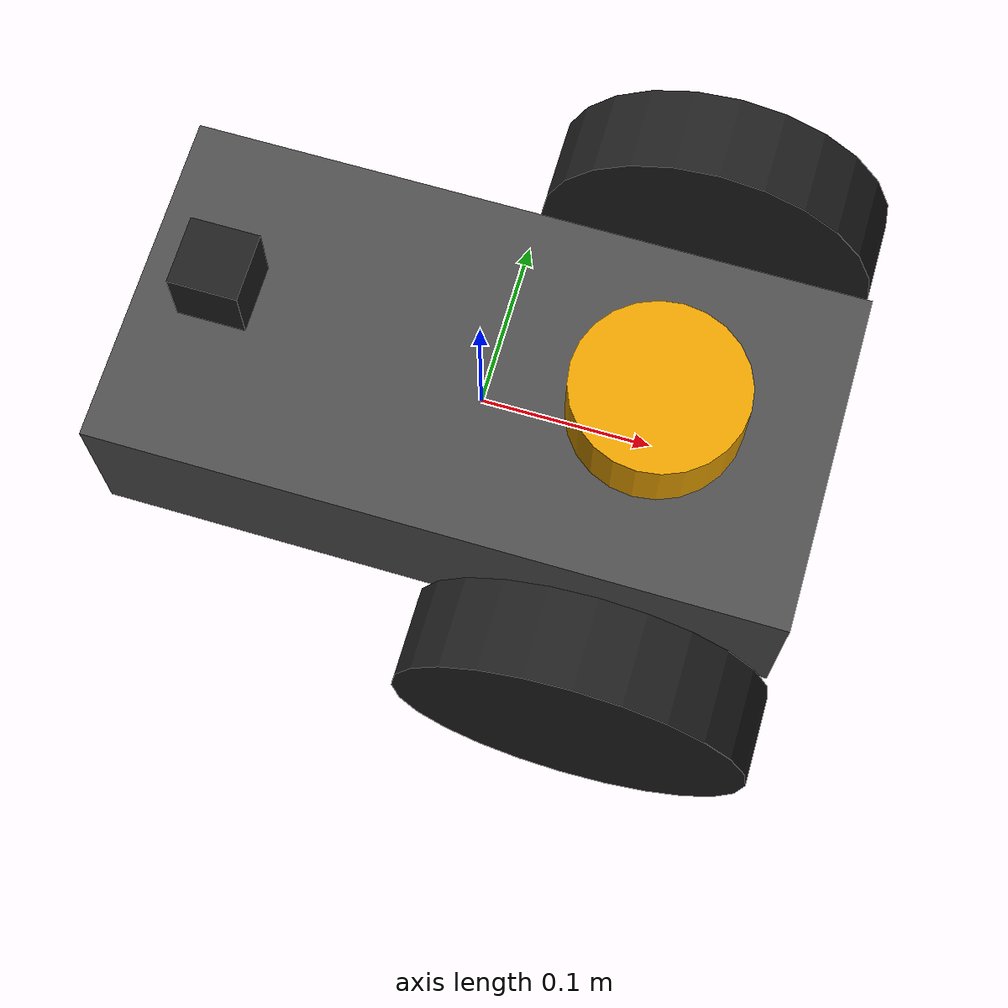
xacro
<?xml version='1.0'?>

<robot name="ros_robotics" xmlns:xacro="http://www.ros.org/wiki/xacro">

	<xacro:include filename="lidar.xacro"/>
  <link name="base_footprint"/>
  <link name='base_link'>
    <pose>0 0 0.1 0 0 0</pose>

    <inertial>
      <mass value="10.0"/>
      <origin xyz="0.0 0 0.1" rpy=" 0 0 0"/>
      <inertia
          ixx="2.0" ixy="0" ixz="0"
          iyy="5.0" iyz="0"
          izz="3.0"
      />
    </inertial>

    <collision>
      <geometry>
        <box size=".4 .2 .1"/>
      </geometry>
    </collision>

    <visual>
      <origin xyz="0 0 0" rpy=" 0 0 0"/>
      <geometry>
        <box size=".4 .2 .1"/>
      </geometry>
    </visual>
</link>
<link name="caster_back_link">
    <collision name='caster_collision'>
      <origin xyz="0 0 0" rpy=" 0 0 0"/>
      <geometry>
        <sphere radius="0.05"/>
      </geometry>
      <surface>
      	<friction>
      		<mu1 value="0.0"/>
      		<mu2 value="0.0"/>
      	</friction>
      </surface>
    </collision>

    <visual name='caster_visual'>
      <origin xyz="0 0 0" rpy=" 0 0 0"/>
      <geometry>
        <sphere radius="0.05"/>
      </geometry>
    </visual>
  </link>
<joint name="caster_back_joint" type="fixed">
	<parent link="base_link"/>
	<child link="caster_back_link"/>
	<origin xyz="-0.15 0 -0.05" rpy="0 0 0"/>
</joint>

  <link name="wheel_left_link">
    <!--origin xyz="0.1 0.13 0.1" rpy="0 1.5707 1.5707"/-->
    <collision name="collision">
      <origin xyz="0 0 0" rpy="0 1.5707 1.5707"/>
      <geometry>
        <cylinder radius="0.1" length="0.05"/>
      </geometry>
    </collision>
    <visual name="left_wheel_visual">
      <origin xyz="0 0 0" rpy="0 1.5707 1.5707"/>
      <geometry>
        <cylinder radius="0.1" length="0.05"/>
      </geometry>
    </visual>
    <inertial>
      <origin xyz="0 0 0" rpy="0 1.5707 1.5707"/>
      <mass value="5"/>
      <cylinder_inertia m="5" r="0.1" h="0.05"/>
      <inertia
        ixx="1.0" ixy="0.0" ixz="0.0"
        iyy="1.0" iyz="0.0"
        izz="1.0"/>
    </inertial>
  </link>

  <link name="wheel_right_link">
    <!--origin xyz="0.1 -0.13 0.1" rpy="0 1.5707 1.5707"/-->
    <collision>
      <origin xyz="0 0 0" rpy="0 1.5707 1.5707"/>
      <geometry>
        <cylinder radius="0.1" length="0.05"/>
      </geometry>
    </collision>
    <visual>
      <origin xyz="0 0 0" rpy="0 1.5707 1.5707"/>
      <geometry>
        <cylinder radius="0.1" length="0.05"/>
      </geometry>
    </visual>
    <inertial>
      <origin xyz="0 0 0" rpy="0 1.5707 1.5707"/>
      <mass value="5"/>
      <cylinder_inertia m="5" r="0.1" h="0.05"/>
      <inertia
        ixx="1.0" ixy="0.0" ixz="0.0"
        iyy="1.0" iyz="0.0"
        izz="1.0"/>
    </inertial>
  </link>
  <joint name="base_joint" type="fixed">
  	<parent link="base_footprint"/>
  	<child link="base_link"/>
  	<origin xyz="0 0 0" rpy="0 0 0"/>
  </joint>

  <joint type="continuous" name="wheel_left_joint">
    <origin xyz="0.1 0.15 0" rpy="0 0 0"/>
    <child link="wheel_left_link"/>
    <parent link="base_link"/>
    <axis xyz="0 1 0" rpy="0 0 0"/>
    <limit effort="100" velocity="100"/>
    <joint_properties damping="0.0" friction="0.0"/>
  </joint>

  <joint type="continuous" name="wheel_right_joint">
    <origin xyz="0.1 -0.15 0" rpy="0 0 0"/>
    <child link="wheel_right_link"/>
    <parent link="base_link"/>
    <axis xyz="0 1 0" rpy="0 0 0"/>
    <limit effort="100" velocity="100"/>
    <joint_properties damping="0.0" friction="0.0"/>
  </joint>
</robot>

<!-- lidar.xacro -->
<robot xmlns:xacro="http://www.ros.org/wiki/xacro">
	<joint name="scan_joint" type="fixed">
		<parent link="base_link"/>
		<child link="base_scan"/>
		<origin xyz="0.1 0 0.07" rpy="0 0 0"/>
	</joint>

	<link name="base_scan">
		<visual>
			<geometry>
				<cylinder radius="0.05" length="0.04"/>
			</geometry>
		</visual>

		<collision name="collision">
      <origin xyz="0 0 0" rpy="0 1.5707 1.5707"/>
      <geometry>
        <cylinder length="0.05" radius="0.1"/>
      </geometry>
    </collision>

	</link>
	<gazebo reference="base_scan">
		<sensor name="laser" type="ray">
			<pose> 0 0 0 0 0 0</pose>
			<update_rate>10</update_rate>
			<ray>
				<scan>
					<horizontal>
						<samples>360</samples>
						<resolution>1</resolution>
						<min_angle>-3.14</min_angle>
						<max_angle>3.14</max_angle>
					</horizontal>

				</scan>
				<range>
					<min>0.3</min>
					<max>12</max>
					<resolution>0.01</resolution>
				</range>
			</ray>
			<plugin name="gazebo_ros_lds_lfcd_controller" filename="libgazebo_ros_laser.so">
				<topicName>scan</topicName>
        <frameName>base_scan</frameName>
			</plugin>
		</sensor>
	</gazebo>

    <joint name="imu_joint" type="fixed">
       <parent link="base_link"/>
       <child link="imu_link"/>
    <origin xyz="-0.15 0 0.08" rpy="0 0 0"/>
    </joint>

	<link name="imu_link">
		<visual>
			<geometry>
				<box size="0.04 0.04 0.04"/>
			</geometry>
		</visual>
		<collision name="collision">
      <origin xyz="0 0 0" rpy="0 0 0"/>
      <geometry>
        <box size="0.04 0.04 0.04"/>
      </geometry>
    </collision>

	</link>
	<gazebo reference="imu_link">
    		<sensor type="imu" name="imu">
      			<always_on>true</always_on>
    		</sensor>
    		<material>Gazebo/FlatBlack</material>
  	</gazebo>
  	<gazebo>
    <plugin name="imu_plugin" filename="libgazebo_ros_imu.so">
      <alwaysOn>true</alwaysOn>
      <bodyName>imu_link</bodyName>
      <frameName>imu_link</frameName>
      <topicName>imu</topicName>
      <serviceName>imu_service</serviceName>
      <gaussianNoise>0.0</gaussianNoise>
      <updateRate>0</updateRate>
      <imu>
        <noise>
          <type>gaussian</type>
          <rate>
            <mean>0.0</mean>
            <stddev>2e-4</stddev>
            <bias_mean>0.0000075</bias_mean>
            <bias_stddev>0.0000008</bias_stddev>
          </rate>
          <accel>
            <mean>0.0</mean>
            <stddev>1.7e-2</stddev>
            <bias_mean>0.1</bias_mean>
            <bias_stddev>0.001</bias_stddev>
          </accel>
        </noise>
      </imu>
    </plugin>
  </gazebo>
  <gazebo>
    <plugin name="ros_robotics_controller" filename="libgazebo_ros_diff_drive.so">
      <commandTopic>cmd_vel</commandTopic>
      <odometryTopic>odom</odometryTopic>
      <odometryFrame>odom</odometryFrame>
      <odometrySource>world</odometrySource>
      <publishOdomTF>true</publishOdomTF>
      <robotBaseFrame>base_footprint</robotBaseFrame>
      <publishWheelTF>true</publishWheelTF>
      <publishTf>true</publishTf>
      <publishWheelJointState>true</publishWheelJointState>
      <legacyMode>false</legacyMode>
      <updateRate>30</updateRate>
      <leftJoint>wheel_left_joint</leftJoint>
      <rightJoint>wheel_right_joint</rightJoint>
      <wheelSeparation>0.160</wheelSeparation>
      <wheelDiameter>0.066</wheelDiameter>
      <wheelAcceleration>1</wheelAcceleration>
      <wheelTorque>10</wheelTorque>
      <rosDebugLevel>na</rosDebugLevel>
    </plugin>
  </gazebo>

  <gazebo reference="base_link">
    <material>Gazebo/DarkGrey</material>
  </gazebo>

  <gazebo reference="wheel_left_link">
    <mu1>0.1</mu1>
    <mu2>0.1</mu2>
    <kp>500000.0</kp>
    <kd>10.0</kd>
    <minDepth>0.001</minDepth>
    <maxVel>0.1</maxVel>
    <fdir1>1 0 0</fdir1>
    <material>Gazebo/FlatBlack</material>
  </gazebo>

<gazebo reference="wheel_right_link">
    <mu1>0.1</mu1>
    <mu2>0.1</mu2>
    <kp>500000.0</kp>
    <kd>10.0</kd>
    <minDepth>0.001</minDepth>
    <maxVel>0.1</maxVel>
    <fdir1>1 0 0</fdir1>
    <material>Gazebo/FlatBlack</material>
  </gazebo>

  <gazebo reference="caster_back_link">
    <mu1>0.1</mu1>
    <mu2>0.1</mu2>
    <kp>1000000.0</kp>
    <kd>100.0</kd>
    <minDepth>0.001</minDepth>
    <maxVel>1.0</maxVel>
    <material>Gazebo/FlatBlack</material>
  </gazebo>
</robot>
